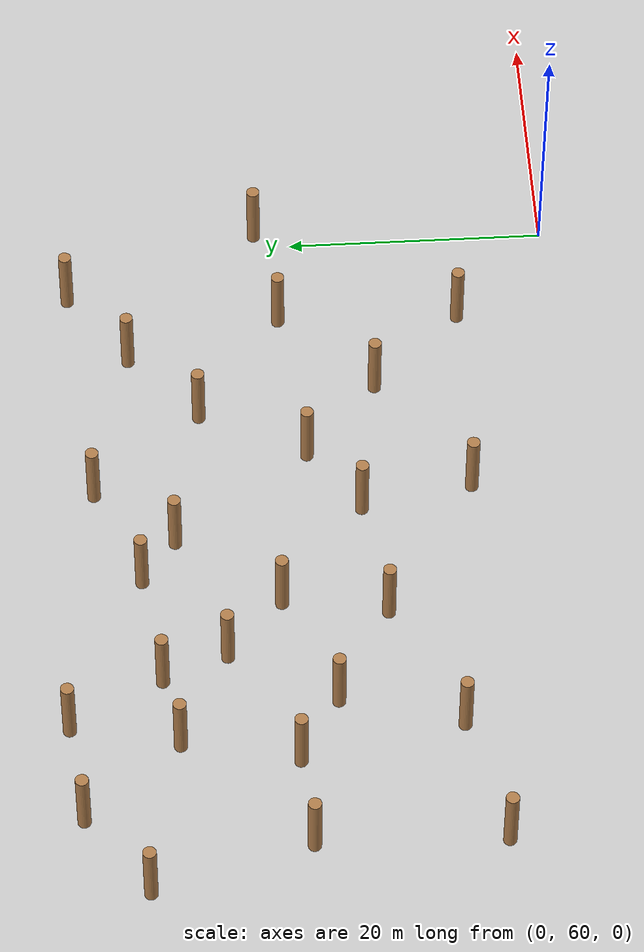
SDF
<sdf version="1.6">
 <world name="default">
  <model name="ground_plane">
   <static>1</static>
   <link name="link">
    <collision name="collision">
     <geometry><plane><normal>0 0 1</normal><size>100 100</size></plane></geometry>
     <surface><friction><ode><mu>100</mu><mu2>50</mu2></ode></friction></surface>
    </collision>
    <visual name="visual">
     <cast_shadows>0</cast_shadows>
     <geometry><plane><normal>0 0 1</normal><size>100 100</size></plane></geometry>
     <material>
      <script><uri>file://media/materials/scripts/gazebo.material</uri><name>Gazebo/Grey</name></script>
     </material>
    </visual>
   </link>
  </model>
  <model name="WoodPillars">
   <link name="link_clone_12">
    <inertial>
     <mass>1</mass>
     <inertia><ixx>0.145833</ixx><ixy>0</ixy><ixz>0</ixz><iyy>0.145833</iyy><iyz>0</iyz><izz>0.125</izz></inertia>
    </inertial>
    <pose>36.6063 2.3916 -3e-06 0 -0 -0.001289</pose>
    <visual name="visual">
     <geometry><cylinder><radius>0.5</radius><length>5.50507</length></cylinder></geometry>
     <material>
      <script><name>Gazebo/Wood</name><uri>file://media/materials/scripts/gazebo.material</uri></script>
      <shader type="pixel"/>
     </material>
    </visual>
    <collision name="collision">
     <geometry><cylinder><radius>0.5</radius><length>5.50507</length></cylinder></geometry>
     <surface>
      <friction>
       <ode><mu>1</mu><mu2>1</mu2><fdir1>0 0 0</fdir1><slip1>0</slip1><slip2>0</slip2></ode>
       <torsional>
        <coefficient>1</coefficient>
        <patch_radius>0</patch_radius>
        <surface_radius>0</surface_radius>
        <use_patch_radius>1</use_patch_radius>
        <ode><slip>0</slip></ode>
       </torsional>
      </friction>
      <bounce><restitution_coefficient>0</restitution_coefficient><threshold>1e+06</threshold></bounce>
      <contact>
       <collide_without_contact>0</collide_without_contact>
       <collide_without_contact_bitmask>1</collide_without_contact_bitmask>
       <collide_bitmask>1</collide_bitmask>
       <ode>
        <soft_cfm>0</soft_cfm>
        <soft_erp>0.2</soft_erp>
        <kp>1e+13</kp>
        <kd>1</kd>
        <max_vel>0.01</max_vel>
        <min_depth>0</min_depth>
       </ode>
       <bullet>
        <split_impulse>1</split_impulse>
        <split_impulse_penetration_threshold>-0.01</split_impulse_penetration_threshold>
        <soft_cfm>0</soft_cfm>
        <soft_erp>0.2</soft_erp>
        <kp>1e+13</kp>
        <kd>1</kd>
       </bullet>
      </contact>
     </surface>
    </collision>
   </link>
   <link name="link_clone_33">
    <inertial>
     <mass>1</mass>
     <inertia><ixx>0.145833</ixx><ixy>0</ixy><ixz>0</ixz><iyy>0.145833</iyy><iyz>0</iyz><izz>0.125</izz></inertia>
    </inertial>
    <pose>39.6457 18.8804 -3e-06 0 -0 -0.001289</pose>
    <visual name="visual">
     <geometry><cylinder><radius>0.5</radius><length>5.50507</length></cylinder></geometry>
     <material>
      <script><name>Gazebo/Wood</name><uri>file://media/materials/scripts/gazebo.material</uri></script>
      <shader type="pixel"/>
     </material>
    </visual>
    <collision name="collision">
     <geometry><cylinder><radius>0.5</radius><length>5.50507</length></cylinder></geometry>
     <surface>
      <friction>
       <ode><mu>1</mu><mu2>1</mu2><fdir1>0 0 0</fdir1><slip1>0</slip1><slip2>0</slip2></ode>
       <torsional>
        <coefficient>1</coefficient>
        <patch_radius>0</patch_radius>
        <surface_radius>0</surface_radius>
        <use_patch_radius>1</use_patch_radius>
        <ode><slip>0</slip></ode>
       </torsional>
      </friction>
      <bounce><restitution_coefficient>0</restitution_coefficient><threshold>1e+06</threshold></bounce>
      <contact>
       <collide_without_contact>0</collide_without_contact>
       <collide_without_contact_bitmask>1</collide_without_contact_bitmask>
       <collide_bitmask>1</collide_bitmask>
       <ode>
        <soft_cfm>0</soft_cfm>
        <soft_erp>0.2</soft_erp>
        <kp>1e+13</kp>
        <kd>1</kd>
        <max_vel>0.01</max_vel>
        <min_depth>0</min_depth>
       </ode>
       <bullet>
        <split_impulse>1</split_impulse>
        <split_impulse_penetration_threshold>-0.01</split_impulse_penetration_threshold>
        <soft_cfm>0</soft_cfm>
        <soft_erp>0.2</soft_erp>
        <kp>1e+13</kp>
        <kd>1</kd>
       </bullet>
      </contact>
     </surface>
    </collision>
   </link>
   <link name="link_clone_5">
    <inertial>
     <mass>1</mass>
     <inertia><ixx>0.145833</ixx><ixy>0</ixy><ixz>0</ixz><iyy>0.145833</iyy><iyz>0</iyz><izz>0.125</izz></inertia>
    </inertial>
    <pose>33.2189 14.316 -3e-06 0 -0 -0.001289</pose>
    <visual name="visual">
     <geometry><cylinder><radius>0.5</radius><length>5.50507</length></cylinder></geometry>
     <material>
      <script><name>Gazebo/Wood</name><uri>file://media/materials/scripts/gazebo.material</uri></script>
      <shader type="pixel"/>
     </material>
    </visual>
    <collision name="collision">
     <geometry><cylinder><radius>0.5</radius><length>5.50507</length></cylinder></geometry>
     <surface>
      <friction>
       <ode><mu>1</mu><mu2>1</mu2><fdir1>0 0 0</fdir1><slip1>0</slip1><slip2>0</slip2></ode>
       <torsional>
        <coefficient>1</coefficient>
        <patch_radius>0</patch_radius>
        <surface_radius>0</surface_radius>
        <use_patch_radius>1</use_patch_radius>
        <ode><slip>0</slip></ode>
       </torsional>
      </friction>
      <bounce><restitution_coefficient>0</restitution_coefficient><threshold>1e+06</threshold></bounce>
      <contact>
       <collide_without_contact>0</collide_without_contact>
       <collide_without_contact_bitmask>1</collide_without_contact_bitmask>
       <collide_bitmask>1</collide_bitmask>
       <ode>
        <soft_cfm>0</soft_cfm>
        <soft_erp>0.2</soft_erp>
        <kp>1e+13</kp>
        <kd>1</kd>
        <max_vel>0.01</max_vel>
        <min_depth>0</min_depth>
       </ode>
       <bullet>
        <split_impulse>1</split_impulse>
        <split_impulse_penetration_threshold>-0.01</split_impulse_penetration_threshold>
        <soft_cfm>0</soft_cfm>
        <soft_erp>0.2</soft_erp>
        <kp>1e+13</kp>
        <kd>1</kd>
       </bullet>
      </contact>
     </surface>
    </collision>
   </link>
   <link name="link_clone_6">
    <inertial>
     <mass>1</mass>
     <inertia><ixx>0.145833</ixx><ixy>0</ixy><ixz>0</ixz><iyy>0.145833</iyy><iyz>0</iyz><izz>0.125</izz></inertia>
    </inertial>
    <pose>36.2258 -11.6926 -3e-06 0 -0 -0.001289</pose>
    <visual name="visual">
     <geometry><cylinder><radius>0.5</radius><length>5.50507</length></cylinder></geometry>
     <material>
      <script><name>Gazebo/Wood</name><uri>file://media/materials/scripts/gazebo.material</uri></script>
      <shader type="pixel"/>
     </material>
    </visual>
    <collision name="collision">
     <geometry><cylinder><radius>0.5</radius><length>5.50507</length></cylinder></geometry>
     <surface>
      <friction>
       <ode><mu>1</mu><mu2>1</mu2><fdir1>0 0 0</fdir1><slip1>0</slip1><slip2>0</slip2></ode>
       <torsional>
        <coefficient>1</coefficient>
        <patch_radius>0</patch_radius>
        <surface_radius>0</surface_radius>
        <use_patch_radius>1</use_patch_radius>
        <ode><slip>0</slip></ode>
       </torsional>
      </friction>
      <bounce><restitution_coefficient>0</restitution_coefficient><threshold>1e+06</threshold></bounce>
      <contact>
       <collide_without_contact>0</collide_without_contact>
       <collide_without_contact_bitmask>1</collide_without_contact_bitmask>
       <collide_bitmask>1</collide_bitmask>
       <ode>
        <soft_cfm>0</soft_cfm>
        <soft_erp>0.2</soft_erp>
        <kp>1e+13</kp>
        <kd>1</kd>
        <max_vel>0.01</max_vel>
        <min_depth>0</min_depth>
       </ode>
       <bullet>
        <split_impulse>1</split_impulse>
        <split_impulse_penetration_threshold>-0.01</split_impulse_penetration_threshold>
        <soft_cfm>0</soft_cfm>
        <soft_erp>0.2</soft_erp>
        <kp>1e+13</kp>
        <kd>1</kd>
       </bullet>
      </contact>
     </surface>
    </collision>
   </link>
   <static>0</static>
   <pose>-93.4472 79.0245 2.75253 0 -0 0.002245</pose>
  </model>
  <model name="WoodPillars_0">
   <link name="link">
    <inertial>
     <mass>1</mass>
     <inertia><ixx>0.145833</ixx><ixy>0</ixy><ixz>0</ixz><iyy>0.145833</iyy><iyz>0</iyz><izz>0.125</izz></inertia>
    </inertial>
    <visual name="visual">
     <geometry><cylinder><radius>0.5</radius><length>5.50507</length></cylinder></geometry>
     <material>
      <script><name>Gazebo/Wood</name><uri>file://media/materials/scripts/gazebo.material</uri></script>
     </material>
    </visual>
    <collision name="collision">
     <geometry><cylinder><radius>0.5</radius><length>5.50507</length></cylinder></geometry>
     <surface>
      <friction>
       <ode><mu>1</mu><mu2>1</mu2><fdir1>0 0 0</fdir1><slip1>0</slip1><slip2>0</slip2></ode>
       <torsional>
        <coefficient>1</coefficient>
        <patch_radius>0</patch_radius>
        <surface_radius>0</surface_radius>
        <use_patch_radius>1</use_patch_radius>
        <ode><slip>0</slip></ode>
       </torsional>
      </friction>
      <bounce><restitution_coefficient>0</restitution_coefficient><threshold>1e+06</threshold></bounce>
      <contact>
       <collide_without_contact>0</collide_without_contact>
       <collide_without_contact_bitmask>1</collide_without_contact_bitmask>
       <collide_bitmask>1</collide_bitmask>
       <ode>
        <soft_cfm>0</soft_cfm>
        <soft_erp>0.2</soft_erp>
        <kp>1e+13</kp>
        <kd>1</kd>
        <max_vel>0.01</max_vel>
        <min_depth>0</min_depth>
       </ode>
       <bullet>
        <split_impulse>1</split_impulse>
        <split_impulse_penetration_threshold>-0.01</split_impulse_penetration_threshold>
        <soft_cfm>0</soft_cfm>
        <soft_erp>0.2</soft_erp>
        <kp>1e+13</kp>
        <kd>1</kd>
       </bullet>
      </contact>
     </surface>
    </collision>
   </link>
   <link name="link_clone">
    <inertial>
     <mass>1</mass>
     <inertia><ixx>0.145833</ixx><ixy>0</ixy><ixz>0</ixz><iyy>0.145833</iyy><iyz>0</iyz><izz>0.125</izz></inertia>
    </inertial>
    <pose>17.6954 -2.91348 -2e-06 0 -0 -0.001289</pose>
    <visual name="visual">
     <geometry><cylinder><radius>0.5</radius><length>5.50507</length></cylinder></geometry>
     <material>
      <script><name>Gazebo/Wood</name><uri>file://media/materials/scripts/gazebo.material</uri></script>
      <shader type="pixel"/>
     </material>
    </visual>
    <collision name="collision">
     <geometry><cylinder><radius>0.5</radius><length>5.50507</length></cylinder></geometry>
     <surface>
      <friction>
       <ode><mu>1</mu><mu2>1</mu2><fdir1>0 0 0</fdir1><slip1>0</slip1><slip2>0</slip2></ode>
       <torsional>
        <coefficient>1</coefficient>
        <patch_radius>0</patch_radius>
        <surface_radius>0</surface_radius>
        <use_patch_radius>1</use_patch_radius>
        <ode><slip>0</slip></ode>
       </torsional>
      </friction>
      <bounce><restitution_coefficient>0</restitution_coefficient><threshold>1e+06</threshold></bounce>
      <contact>
       <collide_without_contact>0</collide_without_contact>
       <collide_without_contact_bitmask>1</collide_without_contact_bitmask>
       <collide_bitmask>1</collide_bitmask>
       <ode>
        <soft_cfm>0</soft_cfm>
        <soft_erp>0.2</soft_erp>
        <kp>1e+13</kp>
        <kd>1</kd>
        <max_vel>0.01</max_vel>
        <min_depth>0</min_depth>
       </ode>
       <bullet>
        <split_impulse>1</split_impulse>
        <split_impulse_penetration_threshold>-0.01</split_impulse_penetration_threshold>
        <soft_cfm>0</soft_cfm>
        <soft_erp>0.2</soft_erp>
        <kp>1e+13</kp>
        <kd>1</kd>
       </bullet>
      </contact>
     </surface>
    </collision>
   </link>
   <link name="link_clone_10">
    <inertial>
     <mass>1</mass>
     <inertia><ixx>0.145833</ixx><ixy>0</ixy><ixz>0</ixz><iyy>0.145833</iyy><iyz>0</iyz><izz>0.125</izz></inertia>
    </inertial>
    <pose>2.50237 12.8939 0 0 -0 -0.001289</pose>
    <visual name="visual">
     <geometry><cylinder><radius>0.5</radius><length>5.50507</length></cylinder></geometry>
     <material>
      <script><name>Gazebo/Wood</name><uri>file://media/materials/scripts/gazebo.material</uri></script>
      <shader type="pixel"/>
     </material>
    </visual>
    <collision name="collision">
     <geometry><cylinder><radius>0.5</radius><length>5.50507</length></cylinder></geometry>
     <surface>
      <friction>
       <ode><mu>1</mu><mu2>1</mu2><fdir1>0 0 0</fdir1><slip1>0</slip1><slip2>0</slip2></ode>
       <torsional>
        <coefficient>1</coefficient>
        <patch_radius>0</patch_radius>
        <surface_radius>0</surface_radius>
        <use_patch_radius>1</use_patch_radius>
        <ode><slip>0</slip></ode>
       </torsional>
      </friction>
      <bounce><restitution_coefficient>0</restitution_coefficient><threshold>1e+06</threshold></bounce>
      <contact>
       <collide_without_contact>0</collide_without_contact>
       <collide_without_contact_bitmask>1</collide_without_contact_bitmask>
       <collide_bitmask>1</collide_bitmask>
       <ode>
        <soft_cfm>0</soft_cfm>
        <soft_erp>0.2</soft_erp>
        <kp>1e+13</kp>
        <kd>1</kd>
        <max_vel>0.01</max_vel>
        <min_depth>0</min_depth>
       </ode>
       <bullet>
        <split_impulse>1</split_impulse>
        <split_impulse_penetration_threshold>-0.01</split_impulse_penetration_threshold>
        <soft_cfm>0</soft_cfm>
        <soft_erp>0.2</soft_erp>
        <kp>1e+13</kp>
        <kd>1</kd>
       </bullet>
      </contact>
     </surface>
    </collision>
   </link>
   <link name="link_clone_11">
    <inertial>
     <mass>1</mass>
     <inertia><ixx>0.145833</ixx><ixy>0</ixy><ixz>0</ixz><iyy>0.145833</iyy><iyz>0</iyz><izz>0.125</izz></inertia>
    </inertial>
    <pose>20.1245 17.4079 -2e-06 0 -0 -0.001289</pose>
    <visual name="visual">
     <geometry><cylinder><radius>0.5</radius><length>5.50507</length></cylinder></geometry>
     <material>
      <script><name>Gazebo/Wood</name><uri>file://media/materials/scripts/gazebo.material</uri></script>
      <shader type="pixel"/>
     </material>
    </visual>
    <collision name="collision">
     <geometry><cylinder><radius>0.5</radius><length>5.50507</length></cylinder></geometry>
     <surface>
      <friction>
       <ode><mu>1</mu><mu2>1</mu2><fdir1>0 0 0</fdir1><slip1>0</slip1><slip2>0</slip2></ode>
       <torsional>
        <coefficient>1</coefficient>
        <patch_radius>0</patch_radius>
        <surface_radius>0</surface_radius>
        <use_patch_radius>1</use_patch_radius>
        <ode><slip>0</slip></ode>
       </torsional>
      </friction>
      <bounce><restitution_coefficient>0</restitution_coefficient><threshold>1e+06</threshold></bounce>
      <contact>
       <collide_without_contact>0</collide_without_contact>
       <collide_without_contact_bitmask>1</collide_without_contact_bitmask>
       <collide_bitmask>1</collide_bitmask>
       <ode>
        <soft_cfm>0</soft_cfm>
        <soft_erp>0.2</soft_erp>
        <kp>1e+13</kp>
        <kd>1</kd>
        <max_vel>0.01</max_vel>
        <min_depth>0</min_depth>
       </ode>
       <bullet>
        <split_impulse>1</split_impulse>
        <split_impulse_penetration_threshold>-0.01</split_impulse_penetration_threshold>
        <soft_cfm>0</soft_cfm>
        <soft_erp>0.2</soft_erp>
        <kp>1e+13</kp>
        <kd>1</kd>
       </bullet>
      </contact>
     </surface>
    </collision>
   </link>
   <link name="link_clone_12">
    <inertial>
     <mass>1</mass>
     <inertia><ixx>0.145833</ixx><ixy>0</ixy><ixz>0</ixz><iyy>0.145833</iyy><iyz>0</iyz><izz>0.125</izz></inertia>
    </inertial>
    <pose>36.6063 2.3916 -3e-06 0 -0 -0.001289</pose>
    <visual name="visual">
     <geometry><cylinder><radius>0.5</radius><length>5.50507</length></cylinder></geometry>
     <material>
      <script><name>Gazebo/Wood</name><uri>file://media/materials/scripts/gazebo.material</uri></script>
      <shader type="pixel"/>
     </material>
    </visual>
    <collision name="collision">
     <geometry><cylinder><radius>0.5</radius><length>5.50507</length></cylinder></geometry>
     <surface>
      <friction>
       <ode><mu>1</mu><mu2>1</mu2><fdir1>0 0 0</fdir1><slip1>0</slip1><slip2>0</slip2></ode>
       <torsional>
        <coefficient>1</coefficient>
        <patch_radius>0</patch_radius>
        <surface_radius>0</surface_radius>
        <use_patch_radius>1</use_patch_radius>
        <ode><slip>0</slip></ode>
       </torsional>
      </friction>
      <bounce><restitution_coefficient>0</restitution_coefficient><threshold>1e+06</threshold></bounce>
      <contact>
       <collide_without_contact>0</collide_without_contact>
       <collide_without_contact_bitmask>1</collide_without_contact_bitmask>
       <collide_bitmask>1</collide_bitmask>
       <ode>
        <soft_cfm>0</soft_cfm>
        <soft_erp>0.2</soft_erp>
        <kp>1e+13</kp>
        <kd>1</kd>
        <max_vel>0.01</max_vel>
        <min_depth>0</min_depth>
       </ode>
       <bullet>
        <split_impulse>1</split_impulse>
        <split_impulse_penetration_threshold>-0.01</split_impulse_penetration_threshold>
        <soft_cfm>0</soft_cfm>
        <soft_erp>0.2</soft_erp>
        <kp>1e+13</kp>
        <kd>1</kd>
       </bullet>
      </contact>
     </surface>
    </collision>
   </link>
   <link name="link_clone_17">
    <inertial>
     <mass>1</mass>
     <inertia><ixx>0.145833</ixx><ixy>0</ixy><ixz>0</ixz><iyy>0.145833</iyy><iyz>0</iyz><izz>0.125</izz></inertia>
    </inertial>
    <pose>19.3784 -11.4604 -2e-06 0 -0 -0.001289</pose>
    <visual name="visual">
     <geometry><cylinder><radius>0.5</radius><length>5.50507</length></cylinder></geometry>
     <material>
      <script><name>Gazebo/Wood</name><uri>file://media/materials/scripts/gazebo.material</uri></script>
      <shader type="pixel"/>
     </material>
    </visual>
    <collision name="collision">
     <geometry><cylinder><radius>0.5</radius><length>5.50507</length></cylinder></geometry>
     <surface>
      <friction>
       <ode><mu>1</mu><mu2>1</mu2><fdir1>0 0 0</fdir1><slip1>0</slip1><slip2>0</slip2></ode>
       <torsional>
        <coefficient>1</coefficient>
        <patch_radius>0</patch_radius>
        <surface_radius>0</surface_radius>
        <use_patch_radius>1</use_patch_radius>
        <ode><slip>0</slip></ode>
       </torsional>
      </friction>
      <bounce><restitution_coefficient>0</restitution_coefficient><threshold>1e+06</threshold></bounce>
      <contact>
       <collide_without_contact>0</collide_without_contact>
       <collide_without_contact_bitmask>1</collide_without_contact_bitmask>
       <collide_bitmask>1</collide_bitmask>
       <ode>
        <soft_cfm>0</soft_cfm>
        <soft_erp>0.2</soft_erp>
        <kp>1e+13</kp>
        <kd>1</kd>
        <max_vel>0.01</max_vel>
        <min_depth>0</min_depth>
       </ode>
       <bullet>
        <split_impulse>1</split_impulse>
        <split_impulse_penetration_threshold>-0.01</split_impulse_penetration_threshold>
        <soft_cfm>0</soft_cfm>
        <soft_erp>0.2</soft_erp>
        <kp>1e+13</kp>
        <kd>1</kd>
       </bullet>
      </contact>
     </surface>
    </collision>
   </link>
   <link name="link_clone_18">
    <inertial>
     <mass>1</mass>
     <inertia><ixx>0.145833</ixx><ixy>0</ixy><ixz>0</ixz><iyy>0.145833</iyy><iyz>0</iyz><izz>0.125</izz></inertia>
    </inertial>
    <pose>9.1573 3.67739 -1e-06 0 -0 -0.001289</pose>
    <visual name="visual">
     <geometry><cylinder><radius>0.5</radius><length>5.50507</length></cylinder></geometry>
     <material>
      <script><name>Gazebo/Wood</name><uri>file://media/materials/scripts/gazebo.material</uri></script>
      <shader type="pixel"/>
     </material>
    </visual>
    <collision name="collision">
     <geometry><cylinder><radius>0.5</radius><length>5.50507</length></cylinder></geometry>
     <surface>
      <friction>
       <ode><mu>1</mu><mu2>1</mu2><fdir1>0 0 0</fdir1><slip1>0</slip1><slip2>0</slip2></ode>
       <torsional>
        <coefficient>1</coefficient>
        <patch_radius>0</patch_radius>
        <surface_radius>0</surface_radius>
        <use_patch_radius>1</use_patch_radius>
        <ode><slip>0</slip></ode>
       </torsional>
      </friction>
      <bounce><restitution_coefficient>0</restitution_coefficient><threshold>1e+06</threshold></bounce>
      <contact>
       <collide_without_contact>0</collide_without_contact>
       <collide_without_contact_bitmask>1</collide_without_contact_bitmask>
       <collide_bitmask>1</collide_bitmask>
       <ode>
        <soft_cfm>0</soft_cfm>
        <soft_erp>0.2</soft_erp>
        <kp>1e+13</kp>
        <kd>1</kd>
        <max_vel>0.01</max_vel>
        <min_depth>0</min_depth>
       </ode>
       <bullet>
        <split_impulse>1</split_impulse>
        <split_impulse_penetration_threshold>-0.01</split_impulse_penetration_threshold>
        <soft_cfm>0</soft_cfm>
        <soft_erp>0.2</soft_erp>
        <kp>1e+13</kp>
        <kd>1</kd>
       </bullet>
      </contact>
     </surface>
    </collision>
   </link>
   <link name="link_clone_19">
    <inertial>
     <mass>1</mass>
     <inertia><ixx>0.145833</ixx><ixy>0</ixy><ixz>0</ixz><iyy>0.145833</iyy><iyz>0</iyz><izz>0.125</izz></inertia>
    </inertial>
    <pose>-3.28611 11.8265 -0 0 -0 -0.001289</pose>
    <visual name="visual">
     <geometry><cylinder><radius>0.5</radius><length>5.50507</length></cylinder></geometry>
     <material>
      <script><name>Gazebo/Wood</name><uri>file://media/materials/scripts/gazebo.material</uri></script>
      <shader type="pixel"/>
     </material>
    </visual>
    <collision name="collision">
     <geometry><cylinder><radius>0.5</radius><length>5.50507</length></cylinder></geometry>
     <surface>
      <friction>
       <ode><mu>1</mu><mu2>1</mu2><fdir1>0 0 0</fdir1><slip1>0</slip1><slip2>0</slip2></ode>
       <torsional>
        <coefficient>1</coefficient>
        <patch_radius>0</patch_radius>
        <surface_radius>0</surface_radius>
        <use_patch_radius>1</use_patch_radius>
        <ode><slip>0</slip></ode>
       </torsional>
      </friction>
      <bounce><restitution_coefficient>0</restitution_coefficient><threshold>1e+06</threshold></bounce>
      <contact>
       <collide_without_contact>0</collide_without_contact>
       <collide_without_contact_bitmask>1</collide_without_contact_bitmask>
       <collide_bitmask>1</collide_bitmask>
       <ode>
        <soft_cfm>0</soft_cfm>
        <soft_erp>0.2</soft_erp>
        <kp>1e+13</kp>
        <kd>1</kd>
        <max_vel>0.01</max_vel>
        <min_depth>0</min_depth>
       </ode>
       <bullet>
        <split_impulse>1</split_impulse>
        <split_impulse_penetration_threshold>-0.01</split_impulse_penetration_threshold>
        <soft_cfm>0</soft_cfm>
        <soft_erp>0.2</soft_erp>
        <kp>1e+13</kp>
        <kd>1</kd>
       </bullet>
      </contact>
     </surface>
    </collision>
   </link>
   <link name="link_clone_20">
    <inertial>
     <mass>1</mass>
     <inertia><ixx>0.145833</ixx><ixy>0</ixy><ixz>0</ixz><iyy>0.145833</iyy><iyz>0</iyz><izz>0.125</izz></inertia>
    </inertial>
    <pose>-2.64423 -9.12396 -0 0 -0 -0.001289</pose>
    <visual name="visual">
     <geometry><cylinder><radius>0.5</radius><length>5.50507</length></cylinder></geometry>
     <material>
      <script><name>Gazebo/Wood</name><uri>file://media/materials/scripts/gazebo.material</uri></script>
      <shader type="pixel"/>
     </material>
    </visual>
    <collision name="collision">
     <geometry><cylinder><radius>0.5</radius><length>5.50507</length></cylinder></geometry>
     <surface>
      <friction>
       <ode><mu>1</mu><mu2>1</mu2><fdir1>0 0 0</fdir1><slip1>0</slip1><slip2>0</slip2></ode>
       <torsional>
        <coefficient>1</coefficient>
        <patch_radius>0</patch_radius>
        <surface_radius>0</surface_radius>
        <use_patch_radius>1</use_patch_radius>
        <ode><slip>0</slip></ode>
       </torsional>
      </friction>
      <bounce><restitution_coefficient>0</restitution_coefficient><threshold>1e+06</threshold></bounce>
      <contact>
       <collide_without_contact>0</collide_without_contact>
       <collide_without_contact_bitmask>1</collide_without_contact_bitmask>
       <collide_bitmask>1</collide_bitmask>
       <ode>
        <soft_cfm>0</soft_cfm>
        <soft_erp>0.2</soft_erp>
        <kp>1e+13</kp>
        <kd>1</kd>
        <max_vel>0.01</max_vel>
        <min_depth>0</min_depth>
       </ode>
       <bullet>
        <split_impulse>1</split_impulse>
        <split_impulse_penetration_threshold>-0.01</split_impulse_penetration_threshold>
        <soft_cfm>0</soft_cfm>
        <soft_erp>0.2</soft_erp>
        <kp>1e+13</kp>
        <kd>1</kd>
       </bullet>
      </contact>
     </surface>
    </collision>
   </link>
   <link name="link_clone_21">
    <inertial>
     <mass>1</mass>
     <inertia><ixx>0.145833</ixx><ixy>0</ixy><ixz>0</ixz><iyy>0.145833</iyy><iyz>0</iyz><izz>0.125</izz></inertia>
    </inertial>
    <pose>15.2748 11.406 -1e-06 0 -0 -0.001289</pose>
    <visual name="visual">
     <geometry><cylinder><radius>0.5</radius><length>5.50507</length></cylinder></geometry>
     <material>
      <script><name>Gazebo/Wood</name><uri>file://media/materials/scripts/gazebo.material</uri></script>
      <shader type="pixel"/>
     </material>
    </visual>
    <collision name="collision">
     <geometry><cylinder><radius>0.5</radius><length>5.50507</length></cylinder></geometry>
     <surface>
      <friction>
       <ode><mu>1</mu><mu2>1</mu2><fdir1>0 0 0</fdir1><slip1>0</slip1><slip2>0</slip2></ode>
       <torsional>
        <coefficient>1</coefficient>
        <patch_radius>0</patch_radius>
        <surface_radius>0</surface_radius>
        <use_patch_radius>1</use_patch_radius>
        <ode><slip>0</slip></ode>
       </torsional>
      </friction>
      <bounce><restitution_coefficient>0</restitution_coefficient><threshold>1e+06</threshold></bounce>
      <contact>
       <collide_without_contact>0</collide_without_contact>
       <collide_without_contact_bitmask>1</collide_without_contact_bitmask>
       <collide_bitmask>1</collide_bitmask>
       <ode>
        <soft_cfm>0</soft_cfm>
        <soft_erp>0.2</soft_erp>
        <kp>1e+13</kp>
        <kd>1</kd>
        <max_vel>0.01</max_vel>
        <min_depth>0</min_depth>
       </ode>
       <bullet>
        <split_impulse>1</split_impulse>
        <split_impulse_penetration_threshold>-0.01</split_impulse_penetration_threshold>
        <soft_cfm>0</soft_cfm>
        <soft_erp>0.2</soft_erp>
        <kp>1e+13</kp>
        <kd>1</kd>
       </bullet>
      </contact>
     </surface>
    </collision>
   </link>
   <link name="link_clone_22">
    <inertial>
     <mass>1</mass>
     <inertia><ixx>0.145833</ixx><ixy>0</ixy><ixz>0</ixz><iyy>0.145833</iyy><iyz>0</iyz><izz>0.125</izz></inertia>
    </inertial>
    <pose>27.313 9.05961 -2e-06 0 -0 -0.001289</pose>
    <visual name="visual">
     <geometry><cylinder><radius>0.5</radius><length>5.50507</length></cylinder></geometry>
     <material>
      <script><name>Gazebo/Wood</name><uri>file://media/materials/scripts/gazebo.material</uri></script>
      <shader type="pixel"/>
     </material>
    </visual>
    <collision name="collision">
     <geometry><cylinder><radius>0.5</radius><length>5.50507</length></cylinder></geometry>
     <surface>
      <friction>
       <ode><mu>1</mu><mu2>1</mu2><fdir1>0 0 0</fdir1><slip1>0</slip1><slip2>0</slip2></ode>
       <torsional>
        <coefficient>1</coefficient>
        <patch_radius>0</patch_radius>
        <surface_radius>0</surface_radius>
        <use_patch_radius>1</use_patch_radius>
        <ode><slip>0</slip></ode>
       </torsional>
      </friction>
      <bounce><restitution_coefficient>0</restitution_coefficient><threshold>1e+06</threshold></bounce>
      <contact>
       <collide_without_contact>0</collide_without_contact>
       <collide_without_contact_bitmask>1</collide_without_contact_bitmask>
       <collide_bitmask>1</collide_bitmask>
       <ode>
        <soft_cfm>0</soft_cfm>
        <soft_erp>0.2</soft_erp>
        <kp>1e+13</kp>
        <kd>1</kd>
        <max_vel>0.01</max_vel>
        <min_depth>0</min_depth>
       </ode>
       <bullet>
        <split_impulse>1</split_impulse>
        <split_impulse_penetration_threshold>-0.01</split_impulse_penetration_threshold>
        <soft_cfm>0</soft_cfm>
        <soft_erp>0.2</soft_erp>
        <kp>1e+13</kp>
        <kd>1</kd>
       </bullet>
      </contact>
     </surface>
    </collision>
   </link>
   <link name="link_clone_23">
    <inertial>
     <mass>1</mass>
     <inertia><ixx>0.145833</ixx><ixy>0</ixy><ixz>0</ixz><iyy>0.145833</iyy><iyz>0</iyz><izz>0.125</izz></inertia>
    </inertial>
    <pose>29.5176 -4.71623 -3e-06 0 -0 -0.001289</pose>
    <visual name="visual">
     <geometry><cylinder><radius>0.5</radius><length>5.50507</length></cylinder></geometry>
     <material>
      <script><name>Gazebo/Wood</name><uri>file://media/materials/scripts/gazebo.material</uri></script>
      <shader type="pixel"/>
     </material>
    </visual>
    <collision name="collision">
     <geometry><cylinder><radius>0.5</radius><length>5.50507</length></cylinder></geometry>
     <surface>
      <friction>
       <ode><mu>1</mu><mu2>1</mu2><fdir1>0 0 0</fdir1><slip1>0</slip1><slip2>0</slip2></ode>
       <torsional>
        <coefficient>1</coefficient>
        <patch_radius>0</patch_radius>
        <surface_radius>0</surface_radius>
        <use_patch_radius>1</use_patch_radius>
        <ode><slip>0</slip></ode>
       </torsional>
      </friction>
      <bounce><restitution_coefficient>0</restitution_coefficient><threshold>1e+06</threshold></bounce>
      <contact>
       <collide_without_contact>0</collide_without_contact>
       <collide_without_contact_bitmask>1</collide_without_contact_bitmask>
       <collide_bitmask>1</collide_bitmask>
       <ode>
        <soft_cfm>0</soft_cfm>
        <soft_erp>0.2</soft_erp>
        <kp>1e+13</kp>
        <kd>1</kd>
        <max_vel>0.01</max_vel>
        <min_depth>0</min_depth>
       </ode>
       <bullet>
        <split_impulse>1</split_impulse>
        <split_impulse_penetration_threshold>-0.01</split_impulse_penetration_threshold>
        <soft_cfm>0</soft_cfm>
        <soft_erp>0.2</soft_erp>
        <kp>1e+13</kp>
        <kd>1</kd>
       </bullet>
      </contact>
     </surface>
    </collision>
   </link>
   <link name="link_clone_24">
    <inertial>
     <mass>1</mass>
     <inertia><ixx>0.145833</ixx><ixy>0</ixy><ixz>0</ixz><iyy>0.145833</iyy><iyz>0</iyz><izz>0.125</izz></inertia>
    </inertial>
    <pose>7.84688 -4.26113 -1e-06 0 -0 -0.001289</pose>
    <visual name="visual">
     <geometry><cylinder><radius>0.5</radius><length>5.50507</length></cylinder></geometry>
     <material>
      <script><name>Gazebo/Wood</name><uri>file://media/materials/scripts/gazebo.material</uri></script>
      <shader type="pixel"/>
     </material>
    </visual>
    <collision name="collision">
     <geometry><cylinder><radius>0.5</radius><length>5.50507</length></cylinder></geometry>
     <surface>
      <friction>
       <ode><mu>1</mu><mu2>1</mu2><fdir1>0 0 0</fdir1><slip1>0</slip1><slip2>0</slip2></ode>
       <torsional>
        <coefficient>1</coefficient>
        <patch_radius>0</patch_radius>
        <surface_radius>0</surface_radius>
        <use_patch_radius>1</use_patch_radius>
        <ode><slip>0</slip></ode>
       </torsional>
      </friction>
      <bounce><restitution_coefficient>0</restitution_coefficient><threshold>1e+06</threshold></bounce>
      <contact>
       <collide_without_contact>0</collide_without_contact>
       <collide_without_contact_bitmask>1</collide_without_contact_bitmask>
       <collide_bitmask>1</collide_bitmask>
       <ode>
        <soft_cfm>0</soft_cfm>
        <soft_erp>0.2</soft_erp>
        <kp>1e+13</kp>
        <kd>1</kd>
        <max_vel>0.01</max_vel>
        <min_depth>0</min_depth>
       </ode>
       <bullet>
        <split_impulse>1</split_impulse>
        <split_impulse_penetration_threshold>-0.01</split_impulse_penetration_threshold>
        <soft_cfm>0</soft_cfm>
        <soft_erp>0.2</soft_erp>
        <kp>1e+13</kp>
        <kd>1</kd>
       </bullet>
      </contact>
     </surface>
    </collision>
   </link>
   <link name="link_clone_25">
    <inertial>
     <mass>1</mass>
     <inertia><ixx>0.145833</ixx><ixy>0</ixy><ixz>0</ixz><iyy>0.145833</iyy><iyz>0</iyz><izz>0.125</izz></inertia>
    </inertial>
    <pose>11.7271 14.0632 -1e-06 0 -0 -0.001289</pose>
    <visual name="visual">
     <geometry><cylinder><radius>0.5</radius><length>5.50507</length></cylinder></geometry>
     <material>
      <script><name>Gazebo/Wood</name><uri>file://media/materials/scripts/gazebo.material</uri></script>
      <shader type="pixel"/>
     </material>
    </visual>
    <collision name="collision">
     <geometry><cylinder><radius>0.5</radius><length>5.50507</length></cylinder></geometry>
     <surface>
      <friction>
       <ode><mu>1</mu><mu2>1</mu2><fdir1>0 0 0</fdir1><slip1>0</slip1><slip2>0</slip2></ode>
       <torsional>
        <coefficient>1</coefficient>
        <patch_radius>0</patch_radius>
        <surface_radius>0</surface_radius>
        <use_patch_radius>1</use_patch_radius>
        <ode><slip>0</slip></ode>
       </torsional>
      </friction>
      <bounce><restitution_coefficient>0</restitution_coefficient><threshold>1e+06</threshold></bounce>
      <contact>
       <collide_without_contact>0</collide_without_contact>
       <collide_without_contact_bitmask>1</collide_without_contact_bitmask>
       <collide_bitmask>1</collide_bitmask>
       <ode>
        <soft_cfm>0</soft_cfm>
        <soft_erp>0.2</soft_erp>
        <kp>1e+13</kp>
        <kd>1</kd>
        <max_vel>0.01</max_vel>
        <min_depth>0</min_depth>
       </ode>
       <bullet>
        <split_impulse>1</split_impulse>
        <split_impulse_penetration_threshold>-0.01</split_impulse_penetration_threshold>
        <soft_cfm>0</soft_cfm>
        <soft_erp>0.2</soft_erp>
        <kp>1e+13</kp>
        <kd>1</kd>
       </bullet>
      </contact>
     </surface>
    </collision>
   </link>
   <link name="link_clone_30">
    <inertial>
     <mass>1</mass>
     <inertia><ixx>0.145833</ixx><ixy>0</ixy><ixz>0</ixz><iyy>0.145833</iyy><iyz>0</iyz><izz>0.125</izz></inertia>
    </inertial>
    <pose>4.46339 7.97492 0 0 -0 -0.001289</pose>
    <visual name="visual">
     <geometry><cylinder><radius>0.5</radius><length>5.50507</length></cylinder></geometry>
     <material>
      <script><name>Gazebo/Wood</name><uri>file://media/materials/scripts/gazebo.material</uri></script>
      <shader type="pixel"/>
     </material>
    </visual>
    <collision name="collision">
     <geometry><cylinder><radius>0.5</radius><length>5.50507</length></cylinder></geometry>
     <surface>
      <friction>
       <ode><mu>1</mu><mu2>1</mu2><fdir1>0 0 0</fdir1><slip1>0</slip1><slip2>0</slip2></ode>
       <torsional>
        <coefficient>1</coefficient>
        <patch_radius>0</patch_radius>
        <surface_radius>0</surface_radius>
        <use_patch_radius>1</use_patch_radius>
        <ode><slip>0</slip></ode>
       </torsional>
      </friction>
      <bounce><restitution_coefficient>0</restitution_coefficient><threshold>1e+06</threshold></bounce>
      <contact>
       <collide_without_contact>0</collide_without_contact>
       <collide_without_contact_bitmask>1</collide_without_contact_bitmask>
       <collide_bitmask>1</collide_bitmask>
       <ode>
        <soft_cfm>0</soft_cfm>
        <soft_erp>0.2</soft_erp>
        <kp>1e+13</kp>
        <kd>1</kd>
        <max_vel>0.01</max_vel>
        <min_depth>0</min_depth>
       </ode>
       <bullet>
        <split_impulse>1</split_impulse>
        <split_impulse_penetration_threshold>-0.01</split_impulse_penetration_threshold>
        <soft_cfm>0</soft_cfm>
        <soft_erp>0.2</soft_erp>
        <kp>1e+13</kp>
        <kd>1</kd>
       </bullet>
      </contact>
     </surface>
    </collision>
   </link>
   <link name="link_clone_31">
    <inertial>
     <mass>1</mass>
     <inertia><ixx>0.145833</ixx><ixy>0</ixy><ixz>0</ixz><iyy>0.145833</iyy><iyz>0</iyz><izz>0.125</izz></inertia>
    </inertial>
    <pose>-1.44135 19.9016 0 0 -0 -0.001289</pose>
    <visual name="visual">
     <geometry><cylinder><radius>0.5</radius><length>5.50507</length></cylinder></geometry>
     <material>
      <script><name>Gazebo/Wood</name><uri>file://media/materials/scripts/gazebo.material</uri></script>
      <shader type="pixel"/>
     </material>
    </visual>
    <collision name="collision">
     <geometry><cylinder><radius>0.5</radius><length>5.50507</length></cylinder></geometry>
     <surface>
      <friction>
       <ode><mu>1</mu><mu2>1</mu2><fdir1>0 0 0</fdir1><slip1>0</slip1><slip2>0</slip2></ode>
       <torsional>
        <coefficient>1</coefficient>
        <patch_radius>0</patch_radius>
        <surface_radius>0</surface_radius>
        <use_patch_radius>1</use_patch_radius>
        <ode><slip>0</slip></ode>
       </torsional>
      </friction>
      <bounce><restitution_coefficient>0</restitution_coefficient><threshold>1e+06</threshold></bounce>
      <contact>
       <collide_without_contact>0</collide_without_contact>
       <collide_without_contact_bitmask>1</collide_without_contact_bitmask>
       <collide_bitmask>1</collide_bitmask>
       <ode>
        <soft_cfm>0</soft_cfm>
        <soft_erp>0.2</soft_erp>
        <kp>1e+13</kp>
        <kd>1</kd>
        <max_vel>0.01</max_vel>
        <min_depth>0</min_depth>
       </ode>
       <bullet>
        <split_impulse>1</split_impulse>
        <split_impulse_penetration_threshold>-0.01</split_impulse_penetration_threshold>
        <soft_cfm>0</soft_cfm>
        <soft_erp>0.2</soft_erp>
        <kp>1e+13</kp>
        <kd>1</kd>
       </bullet>
      </contact>
     </surface>
    </collision>
   </link>
   <link name="link_clone_33">
    <inertial>
     <mass>1</mass>
     <inertia><ixx>0.145833</ixx><ixy>0</ixy><ixz>0</ixz><iyy>0.145833</iyy><iyz>0</iyz><izz>0.125</izz></inertia>
    </inertial>
    <pose>39.6457 18.8804 -3e-06 0 -0 -0.001289</pose>
    <visual name="visual">
     <geometry><cylinder><radius>0.5</radius><length>5.50507</length></cylinder></geometry>
     <material>
      <script><name>Gazebo/Wood</name><uri>file://media/materials/scripts/gazebo.material</uri></script>
      <shader type="pixel"/>
     </material>
    </visual>
    <collision name="collision">
     <geometry><cylinder><radius>0.5</radius><length>5.50507</length></cylinder></geometry>
     <surface>
      <friction>
       <ode><mu>1</mu><mu2>1</mu2><fdir1>0 0 0</fdir1><slip1>0</slip1><slip2>0</slip2></ode>
       <torsional>
        <coefficient>1</coefficient>
        <patch_radius>0</patch_radius>
        <surface_radius>0</surface_radius>
        <use_patch_radius>1</use_patch_radius>
        <ode><slip>0</slip></ode>
       </torsional>
      </friction>
      <bounce><restitution_coefficient>0</restitution_coefficient><threshold>1e+06</threshold></bounce>
      <contact>
       <collide_without_contact>0</collide_without_contact>
       <collide_without_contact_bitmask>1</collide_without_contact_bitmask>
       <collide_bitmask>1</collide_bitmask>
       <ode>
        <soft_cfm>0</soft_cfm>
        <soft_erp>0.2</soft_erp>
        <kp>1e+13</kp>
        <kd>1</kd>
        <max_vel>0.01</max_vel>
        <min_depth>0</min_depth>
       </ode>
       <bullet>
        <split_impulse>1</split_impulse>
        <split_impulse_penetration_threshold>-0.01</split_impulse_penetration_threshold>
        <soft_cfm>0</soft_cfm>
        <soft_erp>0.2</soft_erp>
        <kp>1e+13</kp>
        <kd>1</kd>
       </bullet>
      </contact>
     </surface>
    </collision>
   </link>
   <link name="link_clone_35">
    <inertial>
     <mass>1</mass>
     <inertia><ixx>0.145833</ixx><ixy>0</ixy><ixz>0</ixz><iyy>0.145833</iyy><iyz>0</iyz><izz>0.125</izz></inertia>
    </inertial>
    <pose>-5.14728 3.10998 -0 0 -0 -0.001289</pose>
    <visual name="visual">
     <geometry><cylinder><radius>0.5</radius><length>5.50507</length></cylinder></geometry>
     <material>
      <script><name>Gazebo/Wood</name><uri>file://media/materials/scripts/gazebo.material</uri></script>
      <shader type="pixel"/>
     </material>
    </visual>
    <collision name="collision">
     <geometry><cylinder><radius>0.5</radius><length>5.50507</length></cylinder></geometry>
     <surface>
      <friction>
       <ode><mu>1</mu><mu2>1</mu2><fdir1>0 0 0</fdir1><slip1>0</slip1><slip2>0</slip2></ode>
       <torsional>
        <coefficient>1</coefficient>
        <patch_radius>0</patch_radius>
        <surface_radius>0</surface_radius>
        <use_patch_radius>1</use_patch_radius>
        <ode><slip>0</slip></ode>
       </torsional>
      </friction>
      <bounce><restitution_coefficient>0</restitution_coefficient><threshold>1e+06</threshold></bounce>
      <contact>
       <collide_without_contact>0</collide_without_contact>
       <collide_without_contact_bitmask>1</collide_without_contact_bitmask>
       <collide_bitmask>1</collide_bitmask>
       <ode>
        <soft_cfm>0</soft_cfm>
        <soft_erp>0.2</soft_erp>
        <kp>1e+13</kp>
        <kd>1</kd>
        <max_vel>0.01</max_vel>
        <min_depth>0</min_depth>
       </ode>
       <bullet>
        <split_impulse>1</split_impulse>
        <split_impulse_penetration_threshold>-0.01</split_impulse_penetration_threshold>
        <soft_cfm>0</soft_cfm>
        <soft_erp>0.2</soft_erp>
        <kp>1e+13</kp>
        <kd>1</kd>
       </bullet>
      </contact>
     </surface>
    </collision>
   </link>
   <link name="link_clone_4">
    <inertial>
     <mass>1</mass>
     <inertia><ixx>0.145833</ixx><ixy>0</ixy><ixz>0</ixz><iyy>0.145833</iyy><iyz>0</iyz><izz>0.125</izz></inertia>
    </inertial>
    <pose>23.1128 0.93751 -2e-06 0 -0 -0.001289</pose>
    <visual name="visual">
     <geometry><cylinder><radius>0.5</radius><length>5.50507</length></cylinder></geometry>
     <material>
      <script><name>Gazebo/Wood</name><uri>file://media/materials/scripts/gazebo.material</uri></script>
      <shader type="pixel"/>
     </material>
    </visual>
    <collision name="collision">
     <geometry><cylinder><radius>0.5</radius><length>5.50507</length></cylinder></geometry>
     <surface>
      <friction>
       <ode><mu>1</mu><mu2>1</mu2><fdir1>0 0 0</fdir1><slip1>0</slip1><slip2>0</slip2></ode>
       <torsional>
        <coefficient>1</coefficient>
        <patch_radius>0</patch_radius>
        <surface_radius>0</surface_radius>
        <use_patch_radius>1</use_patch_radius>
        <ode><slip>0</slip></ode>
       </torsional>
      </friction>
      <bounce><restitution_coefficient>0</restitution_coefficient><threshold>1e+06</threshold></bounce>
      <contact>
       <collide_without_contact>0</collide_without_contact>
       <collide_without_contact_bitmask>1</collide_without_contact_bitmask>
       <collide_bitmask>1</collide_bitmask>
       <ode>
        <soft_cfm>0</soft_cfm>
        <soft_erp>0.2</soft_erp>
        <kp>1e+13</kp>
        <kd>1</kd>
        <max_vel>0.01</max_vel>
        <min_depth>0</min_depth>
       </ode>
       <bullet>
        <split_impulse>1</split_impulse>
        <split_impulse_penetration_threshold>-0.01</split_impulse_penetration_threshold>
        <soft_cfm>0</soft_cfm>
        <soft_erp>0.2</soft_erp>
        <kp>1e+13</kp>
        <kd>1</kd>
       </bullet>
      </contact>
     </surface>
    </collision>
   </link>
   <link name="link_clone_5">
    <inertial>
     <mass>1</mass>
     <inertia><ixx>0.145833</ixx><ixy>0</ixy><ixz>0</ixz><iyy>0.145833</iyy><iyz>0</iyz><izz>0.125</izz></inertia>
    </inertial>
    <pose>33.2189 14.316 -3e-06 0 -0 -0.001289</pose>
    <visual name="visual">
     <geometry><cylinder><radius>0.5</radius><length>5.50507</length></cylinder></geometry>
     <material>
      <script><name>Gazebo/Wood</name><uri>file://media/materials/scripts/gazebo.material</uri></script>
      <shader type="pixel"/>
     </material>
    </visual>
    <collision name="collision">
     <geometry><cylinder><radius>0.5</radius><length>5.50507</length></cylinder></geometry>
     <surface>
      <friction>
       <ode><mu>1</mu><mu2>1</mu2><fdir1>0 0 0</fdir1><slip1>0</slip1><slip2>0</slip2></ode>
       <torsional>
        <coefficient>1</coefficient>
        <patch_radius>0</patch_radius>
        <surface_radius>0</surface_radius>
        <use_patch_radius>1</use_patch_radius>
        <ode><slip>0</slip></ode>
       </torsional>
      </friction>
      <bounce><restitution_coefficient>0</restitution_coefficient><threshold>1e+06</threshold></bounce>
      <contact>
       <collide_without_contact>0</collide_without_contact>
       <collide_without_contact_bitmask>1</collide_without_contact_bitmask>
       <collide_bitmask>1</collide_bitmask>
       <ode>
        <soft_cfm>0</soft_cfm>
        <soft_erp>0.2</soft_erp>
        <kp>1e+13</kp>
        <kd>1</kd>
        <max_vel>0.01</max_vel>
        <min_depth>0</min_depth>
       </ode>
       <bullet>
        <split_impulse>1</split_impulse>
        <split_impulse_penetration_threshold>-0.01</split_impulse_penetration_threshold>
        <soft_cfm>0</soft_cfm>
        <soft_erp>0.2</soft_erp>
        <kp>1e+13</kp>
        <kd>1</kd>
       </bullet>
      </contact>
     </surface>
    </collision>
   </link>
   <link name="link_clone_6">
    <inertial>
     <mass>1</mass>
     <inertia><ixx>0.145833</ixx><ixy>0</ixy><ixz>0</ixz><iyy>0.145833</iyy><iyz>0</iyz><izz>0.125</izz></inertia>
    </inertial>
    <pose>36.2258 -11.6926 -3e-06 0 -0 -0.001289</pose>
    <visual name="visual">
     <geometry><cylinder><radius>0.5</radius><length>5.50507</length></cylinder></geometry>
     <material>
      <script><name>Gazebo/Wood</name><uri>file://media/materials/scripts/gazebo.material</uri></script>
      <shader type="pixel"/>
     </material>
    </visual>
    <collision name="collision">
     <geometry><cylinder><radius>0.5</radius><length>5.50507</length></cylinder></geometry>
     <surface>
      <friction>
       <ode><mu>1</mu><mu2>1</mu2><fdir1>0 0 0</fdir1><slip1>0</slip1><slip2>0</slip2></ode>
       <torsional>
        <coefficient>1</coefficient>
        <patch_radius>0</patch_radius>
        <surface_radius>0</surface_radius>
        <use_patch_radius>1</use_patch_radius>
        <ode><slip>0</slip></ode>
       </torsional>
      </friction>
      <bounce><restitution_coefficient>0</restitution_coefficient><threshold>1e+06</threshold></bounce>
      <contact>
       <collide_without_contact>0</collide_without_contact>
       <collide_without_contact_bitmask>1</collide_without_contact_bitmask>
       <collide_bitmask>1</collide_bitmask>
       <ode>
        <soft_cfm>0</soft_cfm>
        <soft_erp>0.2</soft_erp>
        <kp>1e+13</kp>
        <kd>1</kd>
        <max_vel>0.01</max_vel>
        <min_depth>0</min_depth>
       </ode>
       <bullet>
        <split_impulse>1</split_impulse>
        <split_impulse_penetration_threshold>-0.01</split_impulse_penetration_threshold>
        <soft_cfm>0</soft_cfm>
        <soft_erp>0.2</soft_erp>
        <kp>1e+13</kp>
        <kd>1</kd>
       </bullet>
      </contact>
     </surface>
    </collision>
   </link>
   <static>0</static>
   <pose>-44.3459 78.9226 2.75253 0 -0 0.001548</pose>
  </model>
  <model name="WoodPillars_1">
   <link name="link_clone_35">
    <inertial>
     <mass>1</mass>
     <inertia><ixx>0.145833</ixx><ixy>0</ixy><ixz>0</ixz><iyy>0.145833</iyy><iyz>0</iyz><izz>0.125</izz></inertia>
    </inertial>
    <pose>-5.14728 3.10998 -0 0 -0 -0.001289</pose>
    <visual name="visual">
     <geometry><cylinder><radius>0.5</radius><length>5.50507</length></cylinder></geometry>
     <material>
      <script><name>Gazebo/Wood</name><uri>file://media/materials/scripts/gazebo.material</uri></script>
      <shader type="pixel"/>
     </material>
    </visual>
    <collision name="collision">
     <geometry><cylinder><radius>0.5</radius><length>5.50507</length></cylinder></geometry>
     <surface>
      <friction>
       <ode><mu>1</mu><mu2>1</mu2><fdir1>0 0 0</fdir1><slip1>0</slip1><slip2>0</slip2></ode>
       <torsional>
        <coefficient>1</coefficient>
        <patch_radius>0</patch_radius>
        <surface_radius>0</surface_radius>
        <use_patch_radius>1</use_patch_radius>
        <ode><slip>0</slip></ode>
       </torsional>
      </friction>
      <bounce><restitution_coefficient>0</restitution_coefficient><threshold>1e+06</threshold></bounce>
      <contact>
       <collide_without_contact>0</collide_without_contact>
       <collide_without_contact_bitmask>1</collide_without_contact_bitmask>
       <collide_bitmask>1</collide_bitmask>
       <ode>
        <soft_cfm>0</soft_cfm>
        <soft_erp>0.2</soft_erp>
        <kp>1e+13</kp>
        <kd>1</kd>
        <max_vel>0.01</max_vel>
        <min_depth>0</min_depth>
       </ode>
       <bullet>
        <split_impulse>1</split_impulse>
        <split_impulse_penetration_threshold>-0.01</split_impulse_penetration_threshold>
        <soft_cfm>0</soft_cfm>
        <soft_erp>0.2</soft_erp>
        <kp>1e+13</kp>
        <kd>1</kd>
       </bullet>
      </contact>
     </surface>
    </collision>
   </link>
   <static>0</static>
   <pose>6.34212 79.7178 2.75253 0 -0 0.001542</pose>
  </model>
 </world>
</sdf>
